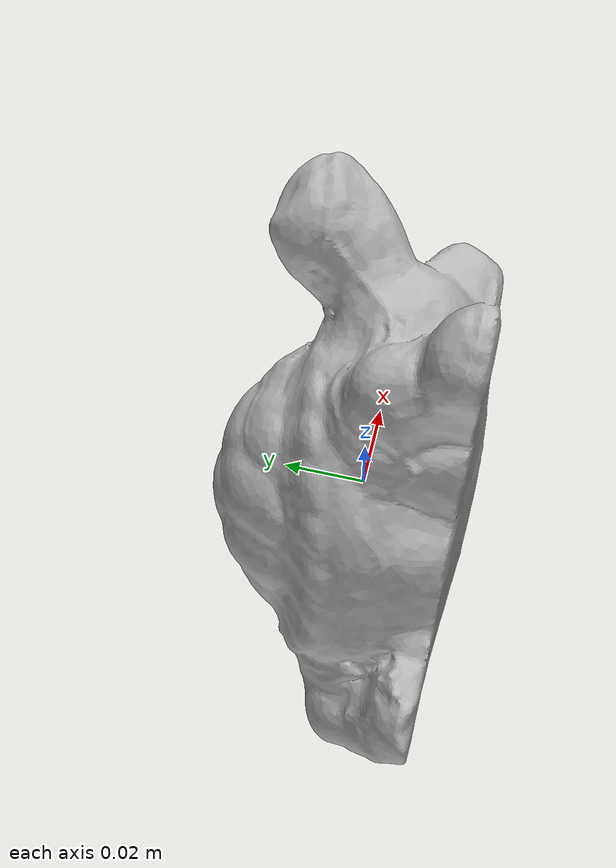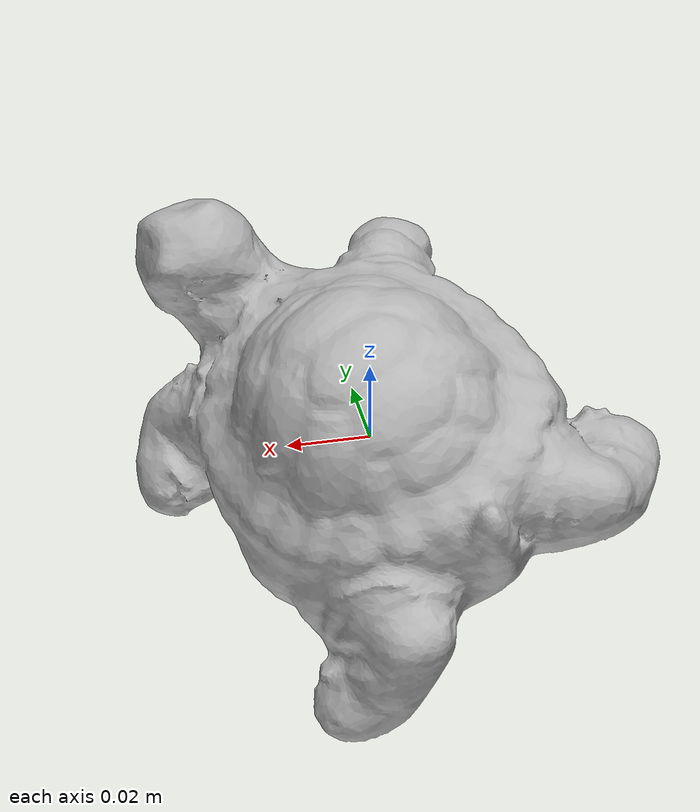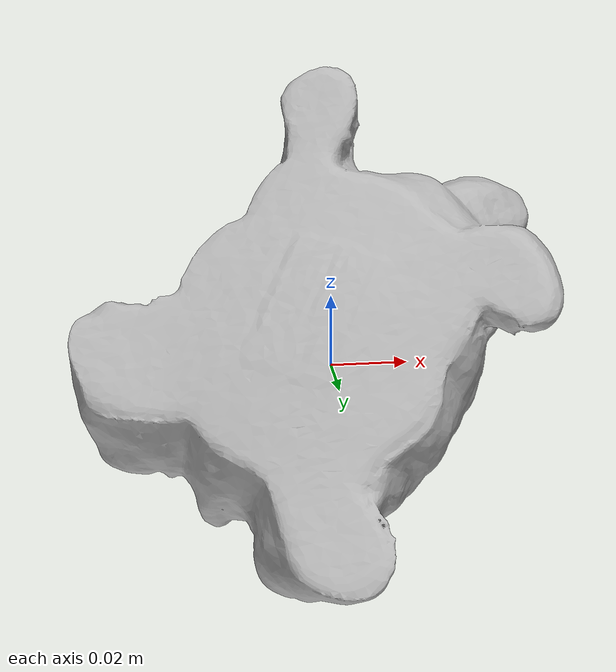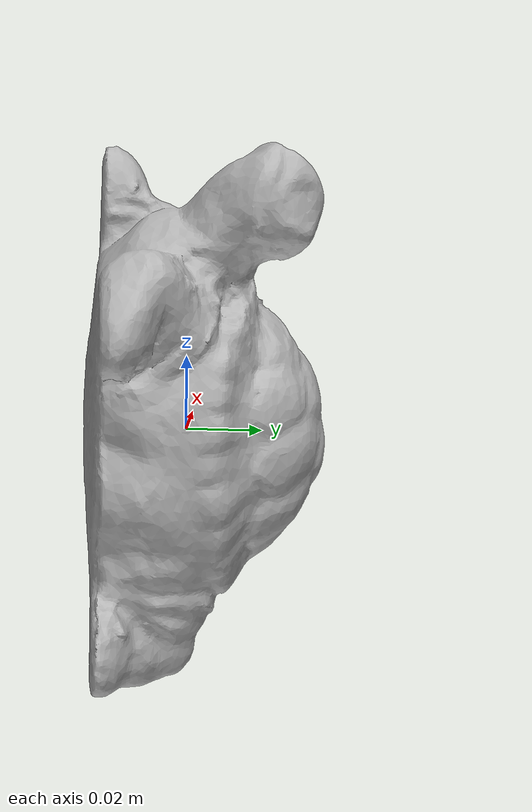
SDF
<?xml version='1.0'?>
<sdf version="1.4">
  <model name="Tortoise">
    <static>false</static>
    <link name="link">
      <inertial>
        <pose>0.001812740547456646 -0.002084123345428541 0.006108463832756751 -0.559958354400137 -0.030447542464335797 -1.4866421945375647</pose>
        <mass>0.04495820108174346</mass>
        <inertia>
          <ixx>7.028341763263967e-05</ixx>
          <ixy>1.9784933421632902e-22</ixy>
          <ixz>-3.5974741044786616e-20</ixz>
          <iyy>5.667665538444888e-05</iyy>
          <iyz>-1.3357963475144637e-20</iyz>
          <izz>3.2864786361841334e-05</izz>
        </inertia>
      </inertial>
      <collision name="collision">
        <geometry>
          <mesh>
            <!-- Use a downsampled mesh for collisions -->
            <uri>model:///Tortoise/Tortoise_250_collision.obj</uri>
	        </mesh>
        </geometry>
        <surface>
      </surface>
      </collision>
      <visual name="visual">
        <geometry>
          <mesh>
            <uri>model:///Tortoise/Tortoise_25k_tex.obj</uri>
	        </mesh>
        </geometry>
        <material>
          <script>
            <uri>model:///Tortoise/Tortoise.material</uri>
            <name>Tortoise</name>
          </script>
        </material>
      </visual>
    </link>
  </model>
</sdf>
